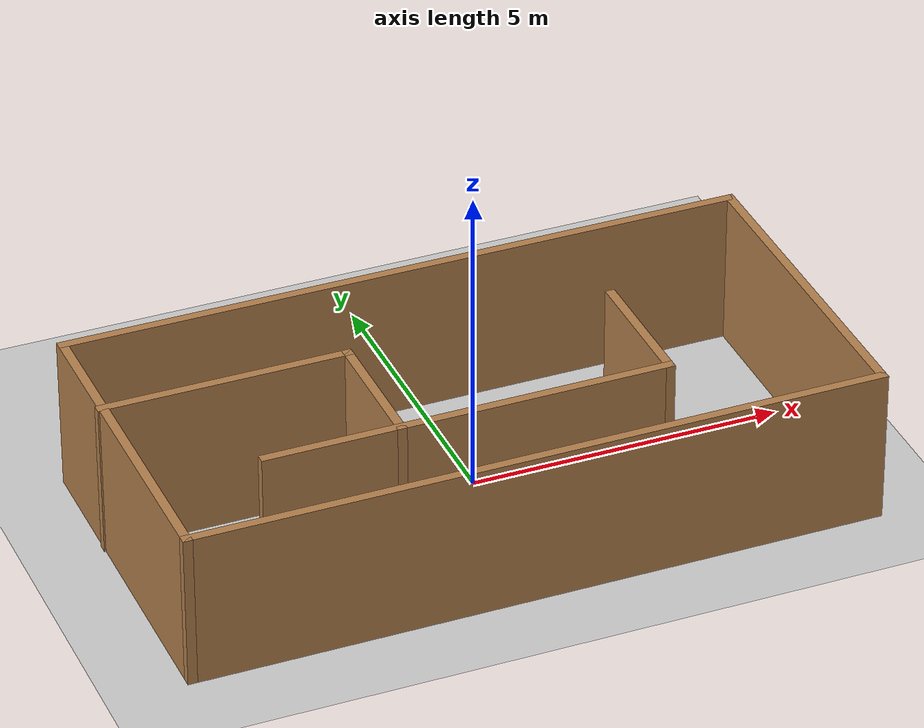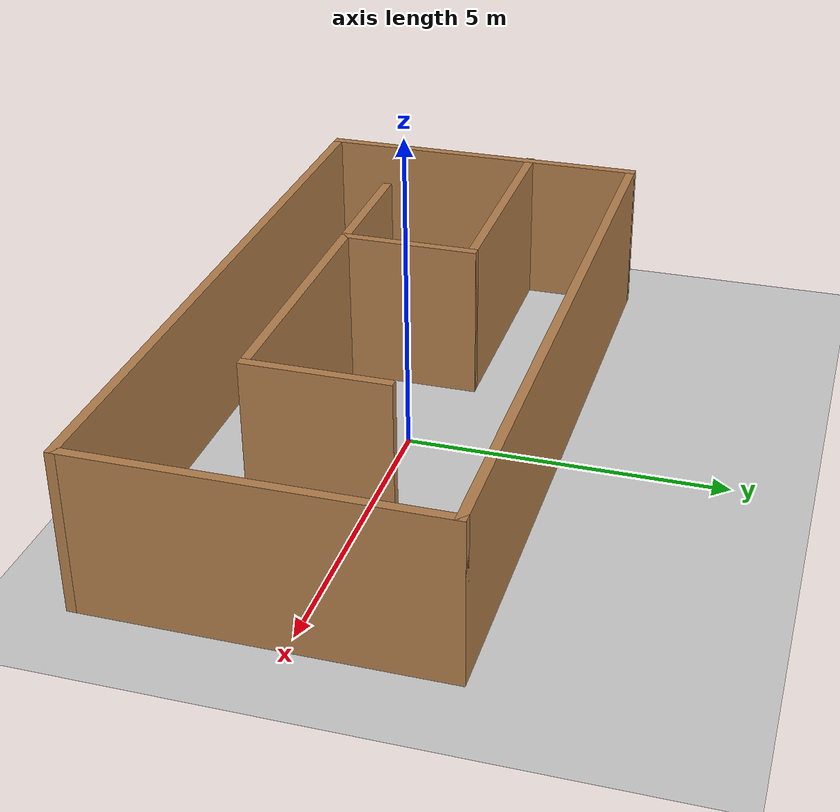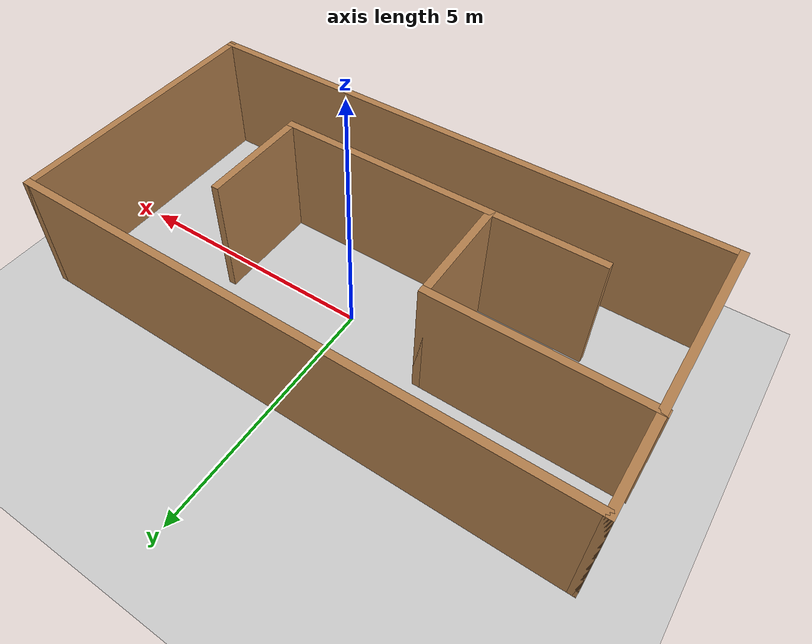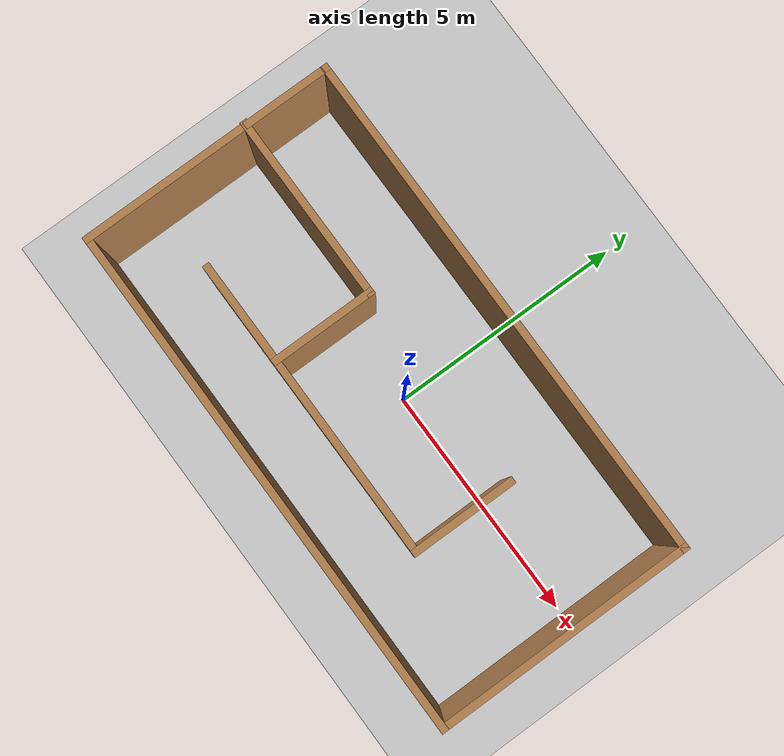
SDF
<sdf version="1.6">
 <world name="default">
  <light name="sun" type="directional">
   <pose>0 0 10 0 -0 0</pose>
   <diffuse>0.8 0.8 0.8 1</diffuse>
   <specular>0.2 0.2 0.2 1</specular>
   <attenuation>
    <range>1000</range>
    <constant>0.9</constant>
    <linear>0.01</linear>
    <quadratic>0.001</quadratic>
   </attenuation>
   <direction>-0.5 0.1 -0.9</direction>
  </light>
  <model name="ground_plane">
   <static>1</static>
   <link name="link">
    <collision name="collision">
     <geometry><plane><normal>0 0 1</normal><size>100 100</size></plane></geometry>
     <surface>
      <contact><collide_bitmask>65535</collide_bitmask></contact>
      <friction><ode><mu>100</mu><mu2>50</mu2></ode></friction>
     </surface>
    </collision>
    <visual name="visual">
     <cast_shadows>0</cast_shadows>
     <geometry><plane><normal>0 0 1</normal><size>100 100</size></plane></geometry>
     <material>
      <script><uri>file://media/materials/scripts/gazebo.material</uri><name>Gazebo/Grey</name></script>
     </material>
    </visual>
   </link>
  </model>
  <gravity>0 0 -9.8</gravity>
  <magnetic_field>6e-06 2.3e-05 -4.2e-05</magnetic_field>
  <atmosphere type="adiabatic"/>
  <physics name="default_physics" default="0" type="ode">
   <max_step_size>0.001</max_step_size>
   <real_time_factor>1</real_time_factor>
   <real_time_update_rate>1000</real_time_update_rate>
  </physics>
  <scene><ambient>0.4 0.4 0.4 1</ambient><background>0.7 0.7 0.7 1</background><shadows>1</shadows></scene>
  <audio><device>default</device></audio>
  <spherical_coordinates>
   <surface_model>EARTH_WGS84</surface_model>
   <latitude_deg>0</latitude_deg>
   <longitude_deg>0</longitude_deg>
   <elevation>0</elevation>
   <heading_deg>0</heading_deg>
  </spherical_coordinates>
  <model name="TrickRoom">
   <pose>-0.204081 -0.356288 0 0 -0 0</pose>
   <link name="Wall_11">
    <collision name="Wall_11_Collision">
     <geometry><box><size>6.5 0.15 2.5</size></box></geometry>
     <pose>0 0 1.25 0 -0 0</pose>
    </collision>
    <visual name="Wall_11_Visual">
     <pose>0 0 1.25 0 -0 0</pose>
     <geometry><box><size>6.5 0.15 2.5</size></box></geometry>
     <material>
      <script><uri>file://media/materials/scripts/gazebo.material</uri><name>Gazebo/Wood</name></script>
      <ambient>1 1 1 1</ambient>
     </material>
     <meta><layer>0</layer></meta>
    </visual>
    <pose>-0.512923 -1.22566 0 0 -0 0</pose>
   </link>
   <link name="Wall_12">
    <collision name="Wall_12_Collision">
     <geometry><box><size>2.25 0.15 2.5</size></box></geometry>
     <pose>0 0 1.25 0 -0 0</pose>
    </collision>
    <visual name="Wall_12_Visual">
     <pose>0 0 1.25 0 -0 0</pose>
     <geometry><box><size>2.25 0.15 2.5</size></box></geometry>
     <material>
      <script><uri>file://media/materials/scripts/gazebo.material</uri><name>Gazebo/Wood</name></script>
      <ambient>1 1 1 1</ambient>
     </material>
     <meta><layer>0</layer></meta>
    </visual>
    <pose>2.66208 -0.175661 0 0 -0 1.5708</pose>
   </link>
   <link name="Wall_3">
    <collision name="Wall_3_Collision">
     <geometry><box><size>5.5 0.15 2.5</size></box></geometry>
     <pose>0 0 1.25 0 -0 0</pose>
    </collision>
    <visual name="Wall_3_Visual">
     <pose>0 0 1.25 0 -0 0</pose>
     <geometry><box><size>5.5 0.15 2.5</size></box></geometry>
     <material>
      <script><uri>file://media/materials/scripts/gazebo.material</uri><name>Gazebo/Wood</name></script>
      <ambient>1 1 1 1</ambient>
     </material>
     <meta><layer>0</layer></meta>
    </visual>
    <pose>-5.41208 0 0 0 -0 1.5708</pose>
   </link>
   <link name="Wall_4">
    <collision name="Wall_4_Collision">
     <geometry><box><size>11 0.15 2.5</size></box></geometry>
     <pose>0 0 1.25 0 -0 0</pose>
    </collision>
    <visual name="Wall_4_Visual">
     <pose>0 0 1.25 0 -0 0</pose>
     <geometry><box><size>11 0.15 2.5</size></box></geometry>
     <material>
      <script><uri>file://media/materials/scripts/gazebo.material</uri><name>Gazebo/Wood</name></script>
      <ambient>1 1 1 1</ambient>
     </material>
     <meta><layer>0</layer></meta>
    </visual>
    <pose>0.012923 2.675 0 0 -0 0</pose>
   </link>
   <link name="Wall_5">
    <collision name="Wall_5_Collision">
     <geometry><box><size>5.5 0.15 2.5</size></box></geometry>
     <pose>0 0 1.25 0 -0 0</pose>
    </collision>
    <visual name="Wall_5_Visual">
     <pose>0 0 1.25 0 -0 0</pose>
     <geometry><box><size>5.5 0.15 2.5</size></box></geometry>
     <material>
      <script><uri>file://media/materials/scripts/gazebo.material</uri><name>Gazebo/Wood</name></script>
      <ambient>1 1 1 1</ambient>
     </material>
     <meta><layer>0</layer></meta>
    </visual>
    <pose>5.43792 0 0 0 -0 -1.5708</pose>
   </link>
   <link name="Wall_6">
    <collision name="Wall_6_Collision">
     <geometry><box><size>11 0.15 2.5</size></box></geometry>
     <pose>0 0 1.25 0 -0 0</pose>
    </collision>
    <visual name="Wall_6_Visual">
     <pose>0 0 1.25 0 -0 0</pose>
     <geometry><box><size>11 0.15 2.5</size></box></geometry>
     <material>
      <script><uri>file://media/materials/scripts/gazebo.material</uri><name>Gazebo/Wood</name></script>
      <ambient>1 1 1 1</ambient>
     </material>
     <meta><layer>0</layer></meta>
    </visual>
    <pose>0.012923 -2.675 0 0 -0 3.14159</pose>
   </link>
   <link name="Wall_8">
    <collision name="Wall_8_Collision">
     <geometry><box><size>4 0.15 2.5</size></box></geometry>
     <pose>0 0 1.25 0 -0 0</pose>
    </collision>
    <visual name="Wall_8_Visual">
     <pose>0 0 1.25 0 -0 0</pose>
     <geometry><box><size>4 0.15 2.5</size></box></geometry>
     <material>
      <script><uri>file://media/materials/scripts/gazebo.material</uri><name>Gazebo/Wood</name></script>
      <ambient>1 1 1 1</ambient>
     </material>
     <meta><layer>0</layer></meta>
    </visual>
    <pose>-3.51292 0.874339 0 0 -0 0</pose>
   </link>
   <link name="Wall_9">
    <collision name="Wall_9_Collision">
     <geometry><box><size>2.25 0.15 2.5</size></box></geometry>
     <pose>0 0 1.25 0 -0 0</pose>
    </collision>
    <visual name="Wall_9_Visual">
     <pose>0 0 1.25 0 -0 0</pose>
     <geometry><box><size>2.25 0.15 2.5</size></box></geometry>
     <material>
      <script><uri>file://media/materials/scripts/gazebo.material</uri><name>Gazebo/Wood</name></script>
      <ambient>1 1 1 1</ambient>
     </material>
     <meta><layer>0</layer></meta>
    </visual>
    <pose>-1.58792 -0.175661 0 0 -0 -1.5708</pose>
   </link>
   <static>1</static>
  </model>
 </world>
</sdf>
